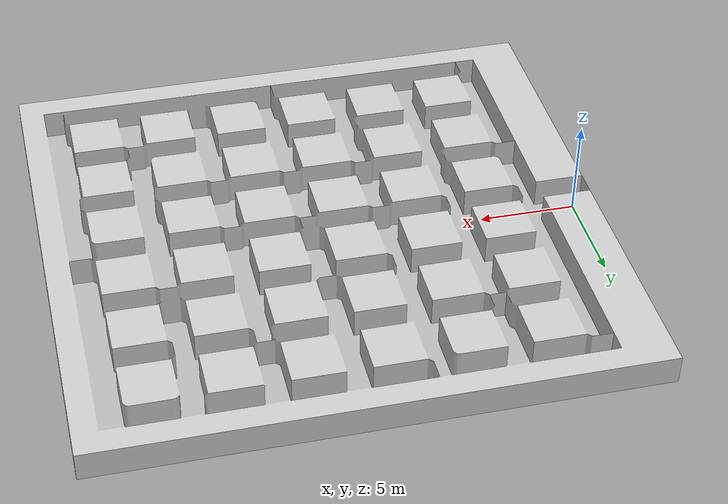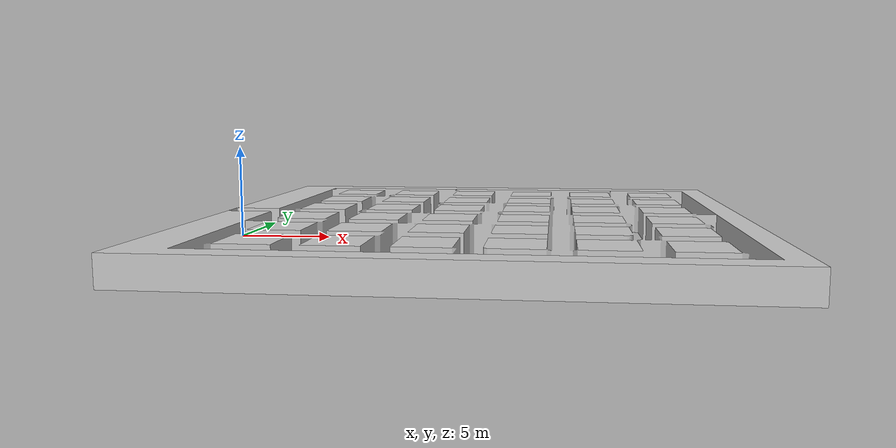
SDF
<sdf version='1.5'>
  <!-- Draw Model -->
  <model name="mazeC">
    <static>true</static>
    <link name="mazeC">
      <collision name="collision">
        <geometry>
          <mesh>
            <uri>model://turtlebot3_maze2/mazeC/mazeC.stl</uri>
          </mesh>
        </geometry>
      </collision>

      <visual name="visual">
        <geometry>
          <mesh>
            <uri>model://turtlebot3_maze2/mazeC/mazeC.dae</uri>
          </mesh>
        </geometry>
      </visual>
    </link>
  </model>
</sdf>
